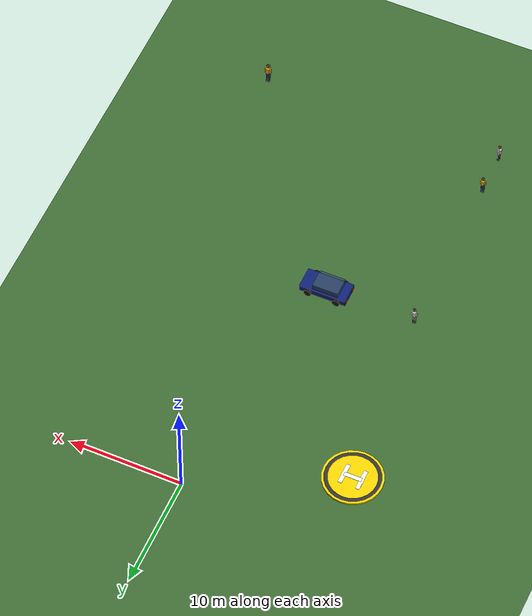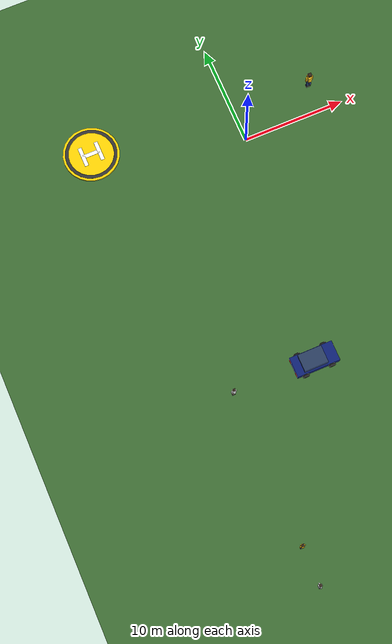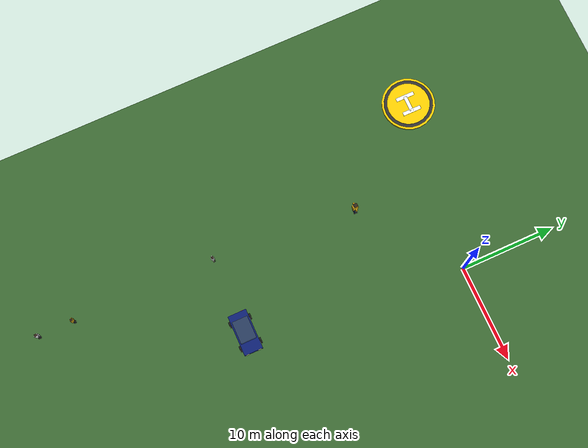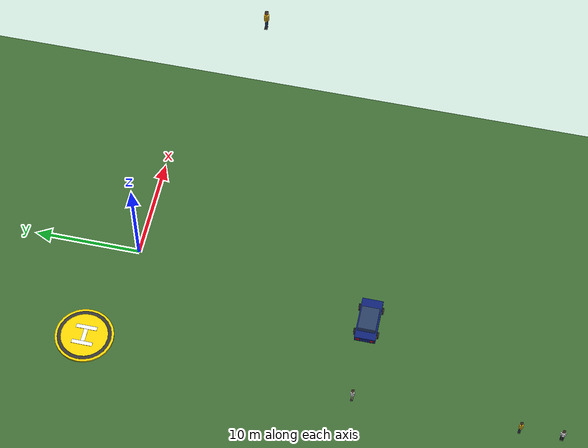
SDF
<sdf version="1.7">
 <world name="city_world">
  <model name="ground_plane">
   <static>true</static>
   <link name="link">
    <collision name="collision">
     <geometry><plane><normal>0 0 1</normal><size>300 300</size></plane></geometry>
     <surface><friction><ode><mu>100</mu><mu2>50</mu2></ode></friction></surface>
    </collision>
    <visual name="visual">
     <geometry><plane><normal>0 0 1</normal><size>300 300</size></plane></geometry>
     <material><ambient>0.24 0.42 0.20 1</ambient><diffuse>0.24 0.42 0.20 1</diffuse></material>
    </visual>
   </link>
  </model>
  <model name="car_14">
   <pose>-3.0 -22.5 0.01 0 0 0.0000</pose>
   <static>true</static>
   <link name="link">
    <visual name="body">
     <pose>0 0 0.45 0 0 0</pose>
     <geometry><box><size>4.2 1.95 0.55</size></box></geometry>
     <material>
      <ambient>0.05 0.12 0.45 1</ambient>
      <diffuse>0.05 0.12 0.45 1</diffuse>
      <specular>0.5 0.5 0.5 1</specular>
     </material>
    </visual>
    <visual name="cabin">
     <pose>-0.2 0 0.95 0 0 0</pose>
     <geometry><box><size>2.3 1.65 0.65</size></box></geometry>
     <material>
      <ambient>0.22 0.30 0.40 0.85</ambient>
      <diffuse>0.22 0.30 0.40 0.85</diffuse>
      <specular>0.7 0.7 0.7 1</specular>
     </material>
    </visual>
    <visual name="hl_l">
     <pose>2.1 0.65 0.45 0 0 0</pose>
     <geometry><box><size>0.08 0.35 0.18</size></box></geometry>
     <material><ambient>1 1 0.8 1</ambient><diffuse>1 1 0.8 1</diffuse><emissive>1 1 0.8 1</emissive></material>
    </visual>
    <visual name="hl_r">
     <pose>2.1 -0.65 0.45 0 0 0</pose>
     <geometry><box><size>0.08 0.35 0.18</size></box></geometry>
     <material><ambient>1 1 0.8 1</ambient><diffuse>1 1 0.8 1</diffuse><emissive>1 1 0.8 1</emissive></material>
    </visual>
    <visual name="tl_l">
     <pose>-2.1 0.65 0.45 0 0 0</pose>
     <geometry><box><size>0.08 0.35 0.18</size></box></geometry>
     <material>
      <ambient>1 0.1 0.1 1</ambient>
      <diffuse>1 0.1 0.1 1</diffuse>
      <emissive>0.8 0 0 1</emissive>
     </material>
    </visual>
    <visual name="tl_r">
     <pose>-2.1 -0.65 0.45 0 0 0</pose>
     <geometry><box><size>0.08 0.35 0.18</size></box></geometry>
     <material>
      <ambient>1 0.1 0.1 1</ambient>
      <diffuse>1 0.1 0.1 1</diffuse>
      <emissive>0.8 0 0 1</emissive>
     </material>
    </visual>
    <visual name="w_fl">
     <pose>1.3 1.05 0.32 1.5708 0 0</pose>
     <geometry><cylinder><radius>0.32</radius><length>0.22</length></cylinder></geometry>
     <material><ambient>0.1 0.1 0.1 1</ambient><diffuse>0.1 0.1 0.1 1</diffuse></material>
    </visual>
    <visual name="w_fr">
     <pose>1.3 -1.05 0.32 1.5708 0 0</pose>
     <geometry><cylinder><radius>0.32</radius><length>0.22</length></cylinder></geometry>
     <material><ambient>0.1 0.1 0.1 1</ambient><diffuse>0.1 0.1 0.1 1</diffuse></material>
    </visual>
    <visual name="w_bl">
     <pose>-1.3 1.05 0.32 1.5708 0 0</pose>
     <geometry><cylinder><radius>0.32</radius><length>0.22</length></cylinder></geometry>
     <material><ambient>0.1 0.1 0.1 1</ambient><diffuse>0.1 0.1 0.1 1</diffuse></material>
    </visual>
    <visual name="w_br">
     <pose>-1.3 -1.05 0.32 1.5708 0 0</pose>
     <geometry><cylinder><radius>0.32</radius><length>0.22</length></cylinder></geometry>
     <material><ambient>0.1 0.1 0.1 1</ambient><diffuse>0.1 0.1 0.1 1</diffuse></material>
    </visual>
   </link>
  </model>
  <model name="pedestrian_3">
   <pose>-11.0 -37.5 0.02 0 0 1.5708</pose>
   <static>true</static>
   <link name="link">
    <visual name="head">
     <pose>0 0 1.62 0 0 0</pose>
     <geometry><sphere><radius>0.13</radius></sphere></geometry>
     <material><ambient>0.50 0.32 0.16 1</ambient><diffuse>0.50 0.32 0.16 1</diffuse></material>
    </visual>
    <visual name="cap">
     <pose>0 -0.02 1.70 0 0 0</pose>
     <geometry><box><size>0.24 0.22 0.10</size></box></geometry>
     <material><ambient>0.2 0.15 0.1 1</ambient><diffuse>0.2 0.15 0.1 1</diffuse></material>
    </visual>
    <visual name="torso">
     <pose>0 0 1.20 0 0 0</pose>
     <geometry><box><size>0.34 0.24 0.52</size></box></geometry>
     <material><ambient>0.92 0.72 0.10 1</ambient><diffuse>0.92 0.72 0.10 1</diffuse></material>
    </visual>
    <visual name="arm_l">
     <pose>0 0.20 1.18 0 0 0</pose>
     <geometry><box><size>0.10 0.10 0.48</size></box></geometry>
     <material><ambient>0.92 0.72 0.10 1</ambient><diffuse>0.92 0.72 0.10 1</diffuse></material>
    </visual>
    <visual name="arm_r">
     <pose>0 -0.20 1.18 0 0 0</pose>
     <geometry><box><size>0.10 0.10 0.48</size></box></geometry>
     <material><ambient>0.92 0.72 0.10 1</ambient><diffuse>0.92 0.72 0.10 1</diffuse></material>
    </visual>
    <visual name="leg_l">
     <pose>0 0.09 0.60 0 0 0</pose>
     <geometry><box><size>0.13 0.13 0.62</size></box></geometry>
     <material><ambient>0.15 0.25 0.45 1</ambient><diffuse>0.15 0.25 0.45 1</diffuse></material>
    </visual>
    <visual name="leg_r">
     <pose>0 -0.09 0.60 0 0 0</pose>
     <geometry><box><size>0.13 0.13 0.62</size></box></geometry>
     <material><ambient>0.15 0.25 0.45 1</ambient><diffuse>0.15 0.25 0.45 1</diffuse></material>
    </visual>
    <visual name="shoe_l">
     <pose>0.04 0.09 0.05 0 0 0</pose>
     <geometry><box><size>0.22 0.13 0.08</size></box></geometry>
     <material><ambient>0.1 0.1 0.1 1</ambient><diffuse>0.1 0.1 0.1 1</diffuse></material>
    </visual>
    <visual name="shoe_r">
     <pose>0.04 -0.09 0.05 0 0 0</pose>
     <geometry><box><size>0.22 0.13 0.08</size></box></geometry>
     <material><ambient>0.1 0.1 0.1 1</ambient><diffuse>0.1 0.1 0.1 1</diffuse></material>
    </visual>
   </link>
  </model>
  <model name="pedestrian_5">
   <pose>-11.0 -22.5 0.02 0 0 1.5708</pose>
   <static>true</static>
   <link name="link">
    <visual name="head">
     <pose>0 0 1.62 0 0 0</pose>
     <geometry><sphere><radius>0.13</radius></sphere></geometry>
     <material><ambient>0.65 0.48 0.28 1</ambient><diffuse>0.65 0.48 0.28 1</diffuse></material>
    </visual>
    <visual name="cap">
     <pose>0 -0.02 1.70 0 0 0</pose>
     <geometry><box><size>0.24 0.22 0.10</size></box></geometry>
     <material><ambient>0.2 0.15 0.1 1</ambient><diffuse>0.2 0.15 0.1 1</diffuse></material>
    </visual>
    <visual name="torso">
     <pose>0 0 1.20 0 0 0</pose>
     <geometry><box><size>0.34 0.24 0.52</size></box></geometry>
     <material><ambient>0.92 0.92 0.94 1</ambient><diffuse>0.92 0.92 0.94 1</diffuse></material>
    </visual>
    <visual name="arm_l">
     <pose>0 0.20 1.18 0 0 0</pose>
     <geometry><box><size>0.10 0.10 0.48</size></box></geometry>
     <material><ambient>0.92 0.92 0.94 1</ambient><diffuse>0.92 0.92 0.94 1</diffuse></material>
    </visual>
    <visual name="arm_r">
     <pose>0 -0.20 1.18 0 0 0</pose>
     <geometry><box><size>0.10 0.10 0.48</size></box></geometry>
     <material><ambient>0.92 0.92 0.94 1</ambient><diffuse>0.92 0.92 0.94 1</diffuse></material>
    </visual>
    <visual name="leg_l">
     <pose>0 0.09 0.60 0 0 0</pose>
     <geometry><box><size>0.13 0.13 0.62</size></box></geometry>
     <material><ambient>0.72 0.65 0.52 1</ambient><diffuse>0.72 0.65 0.52 1</diffuse></material>
    </visual>
    <visual name="leg_r">
     <pose>0 -0.09 0.60 0 0 0</pose>
     <geometry><box><size>0.13 0.13 0.62</size></box></geometry>
     <material><ambient>0.72 0.65 0.52 1</ambient><diffuse>0.72 0.65 0.52 1</diffuse></material>
    </visual>
    <visual name="shoe_l">
     <pose>0.04 0.09 0.05 0 0 0</pose>
     <geometry><box><size>0.22 0.13 0.08</size></box></geometry>
     <material><ambient>0.1 0.1 0.1 1</ambient><diffuse>0.1 0.1 0.1 1</diffuse></material>
    </visual>
    <visual name="shoe_r">
     <pose>0.04 -0.09 0.05 0 0 0</pose>
     <geometry><box><size>0.22 0.13 0.08</size></box></geometry>
     <material><ambient>0.1 0.1 0.1 1</ambient><diffuse>0.1 0.1 0.1 1</diffuse></material>
    </visual>
   </link>
  </model>
  <model name="pedestrian_13">
   <pose>-11.0 -41.2 0.04 0 0 0.0000</pose>
   <static>true</static>
   <link name="link">
    <visual name="head">
     <pose>0 0 1.62 0 0 0</pose>
     <geometry><sphere><radius>0.13</radius></sphere></geometry>
     <material><ambient>0.65 0.48 0.28 1</ambient><diffuse>0.65 0.48 0.28 1</diffuse></material>
    </visual>
    <visual name="cap">
     <pose>0 -0.02 1.70 0 0 0</pose>
     <geometry><box><size>0.24 0.22 0.10</size></box></geometry>
     <material><ambient>0.2 0.15 0.1 1</ambient><diffuse>0.2 0.15 0.1 1</diffuse></material>
    </visual>
    <visual name="torso">
     <pose>0 0 1.20 0 0 0</pose>
     <geometry><box><size>0.34 0.24 0.52</size></box></geometry>
     <material><ambient>0.92 0.92 0.94 1</ambient><diffuse>0.92 0.92 0.94 1</diffuse></material>
    </visual>
    <visual name="arm_l">
     <pose>0 0.20 1.18 0 0 0</pose>
     <geometry><box><size>0.10 0.10 0.48</size></box></geometry>
     <material><ambient>0.92 0.92 0.94 1</ambient><diffuse>0.92 0.92 0.94 1</diffuse></material>
    </visual>
    <visual name="arm_r">
     <pose>0 -0.20 1.18 0 0 0</pose>
     <geometry><box><size>0.10 0.10 0.48</size></box></geometry>
     <material><ambient>0.92 0.92 0.94 1</ambient><diffuse>0.92 0.92 0.94 1</diffuse></material>
    </visual>
    <visual name="leg_l">
     <pose>0 0.09 0.60 0 0 0</pose>
     <geometry><box><size>0.13 0.13 0.62</size></box></geometry>
     <material><ambient>0.18 0.18 0.22 1</ambient><diffuse>0.18 0.18 0.22 1</diffuse></material>
    </visual>
    <visual name="leg_r">
     <pose>0 -0.09 0.60 0 0 0</pose>
     <geometry><box><size>0.13 0.13 0.62</size></box></geometry>
     <material><ambient>0.18 0.18 0.22 1</ambient><diffuse>0.18 0.18 0.22 1</diffuse></material>
    </visual>
    <visual name="shoe_l">
     <pose>0.04 0.09 0.05 0 0 0</pose>
     <geometry><box><size>0.22 0.13 0.08</size></box></geometry>
     <material><ambient>0.1 0.1 0.1 1</ambient><diffuse>0.1 0.1 0.1 1</diffuse></material>
    </visual>
    <visual name="shoe_r">
     <pose>0.04 -0.09 0.05 0 0 0</pose>
     <geometry><box><size>0.22 0.13 0.08</size></box></geometry>
     <material><ambient>0.1 0.1 0.1 1</ambient><diffuse>0.1 0.1 0.1 1</diffuse></material>
    </visual>
   </link>
  </model>
  <model name="pedestrian_27">
   <pose>-2.0 -13.0 38.51 0 0 1.5708</pose>
   <static>true</static>
   <link name="link">
    <visual name="head">
     <pose>0 0 1.62 0 0 0</pose>
     <geometry><sphere><radius>0.13</radius></sphere></geometry>
     <material><ambient>0.50 0.32 0.16 1</ambient><diffuse>0.50 0.32 0.16 1</diffuse></material>
    </visual>
    <visual name="cap">
     <pose>0 -0.02 1.70 0 0 0</pose>
     <geometry><box><size>0.24 0.22 0.10</size></box></geometry>
     <material><ambient>0.2 0.15 0.1 1</ambient><diffuse>0.2 0.15 0.1 1</diffuse></material>
    </visual>
    <visual name="torso">
     <pose>0 0 1.20 0 0 0</pose>
     <geometry><box><size>0.34 0.24 0.52</size></box></geometry>
     <material><ambient>0.92 0.72 0.10 1</ambient><diffuse>0.92 0.72 0.10 1</diffuse></material>
    </visual>
    <visual name="arm_l">
     <pose>0 0.20 1.18 0 0 0</pose>
     <geometry><box><size>0.10 0.10 0.48</size></box></geometry>
     <material><ambient>0.92 0.72 0.10 1</ambient><diffuse>0.92 0.72 0.10 1</diffuse></material>
    </visual>
    <visual name="arm_r">
     <pose>0 -0.20 1.18 0 0 0</pose>
     <geometry><box><size>0.10 0.10 0.48</size></box></geometry>
     <material><ambient>0.92 0.72 0.10 1</ambient><diffuse>0.92 0.72 0.10 1</diffuse></material>
    </visual>
    <visual name="leg_l">
     <pose>0 0.09 0.60 0 0 0</pose>
     <geometry><box><size>0.13 0.13 0.62</size></box></geometry>
     <material><ambient>0.15 0.25 0.45 1</ambient><diffuse>0.15 0.25 0.45 1</diffuse></material>
    </visual>
    <visual name="leg_r">
     <pose>0 -0.09 0.60 0 0 0</pose>
     <geometry><box><size>0.13 0.13 0.62</size></box></geometry>
     <material><ambient>0.15 0.25 0.45 1</ambient><diffuse>0.15 0.25 0.45 1</diffuse></material>
    </visual>
    <visual name="shoe_l">
     <pose>0.04 0.09 0.05 0 0 0</pose>
     <geometry><box><size>0.22 0.13 0.08</size></box></geometry>
     <material><ambient>0.1 0.1 0.1 1</ambient><diffuse>0.1 0.1 0.1 1</diffuse></material>
    </visual>
    <visual name="shoe_r">
     <pose>0.04 -0.09 0.05 0 0 0</pose>
     <geometry><box><size>0.22 0.13 0.08</size></box></geometry>
     <material><ambient>0.1 0.1 0.1 1</ambient><diffuse>0.1 0.1 0.1 1</diffuse></material>
    </visual>
   </link>
  </model>
  <model name="helipad_3">
   <pose>-15.0 0.0 10.4444 0 0 0</pose>
   <static>true</static>
   <link name="link">
    <visual name="pad">
     <geometry><cylinder><radius>2.5</radius><length>0.15</length></cylinder></geometry>
     <material><ambient>1.0 0.82 0.0 1</ambient><diffuse>1.0 0.82 0.0 1</diffuse></material>
    </visual>
    <visual name="ring">
     <pose>0 0 0.02 0 0 0</pose>
     <geometry><cylinder><radius>2.3</radius><length>0.12</length></cylinder></geometry>
     <material><ambient>0.2 0.2 0.2 1</ambient><diffuse>0.2 0.2 0.2 1</diffuse></material>
    </visual>
    <visual name="inner_pad">
     <pose>0 0 0.04 0 0 0</pose>
     <geometry><cylinder><radius>2.0</radius><length>0.10</length></cylinder></geometry>
     <material><ambient>1.0 0.82 0.0 1</ambient><diffuse>1.0 0.82 0.0 1</diffuse></material>
    </visual>
    <visual name="h_bar1">
     <pose>-0.75 0 0.10 0 0 0</pose>
     <geometry><box><size>0.35 1.8 0.02</size></box></geometry>
     <material><ambient>1 1 1 1</ambient><diffuse>1 1 1 1</diffuse></material>
    </visual>
    <visual name="h_bar2">
     <pose>0.75 0 0.10 0 0 0</pose>
     <geometry><box><size>0.35 1.8 0.02</size></box></geometry>
     <material><ambient>1 1 1 1</ambient><diffuse>1 1 1 1</diffuse></material>
    </visual>
    <visual name="h_cross">
     <pose>0 0 0.10 0 0 0</pose>
     <geometry><box><size>1.5 0.35 0.02</size></box></geometry>
     <material><ambient>1 1 1 1</ambient><diffuse>1 1 1 1</diffuse></material>
    </visual>
   </link>
  </model>
 </world>
</sdf>
